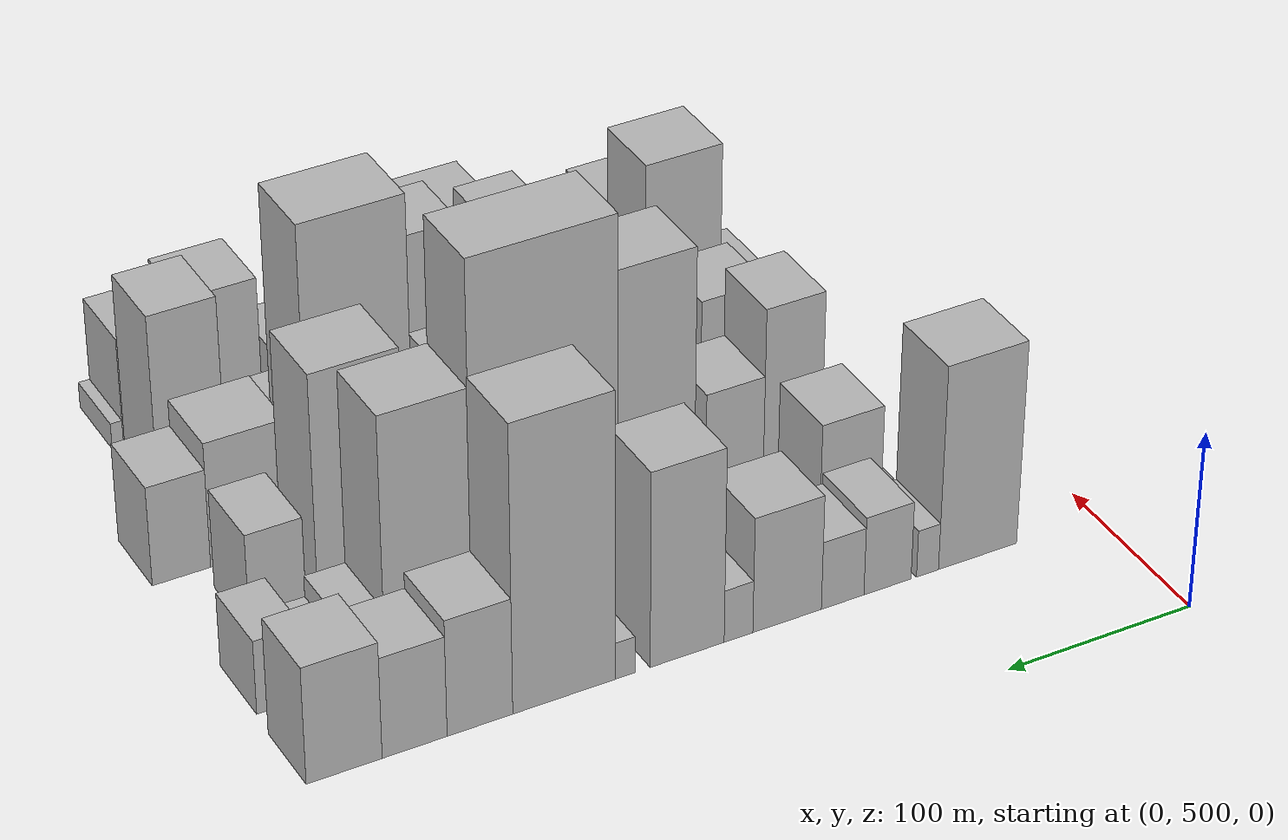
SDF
<sdf version="1.6">
 <world name="default">
  <model name="building_42">
   <static>1</static>
   <pose>100.0000 566.7996 0 0.000000 0.000000 0.000000</pose>
   <link name="link">
    <pose>0 0 58.50 0 0 0</pose>
    <collision name="collision"><geometry><box><size>40.0000 43.5507 117.0000</size></box></geometry></collision>
    <visual name="visual">
     <cast_shadows>0</cast_shadows>
     <geometry><box><size>40.0000 43.5507 117.0000</size></box></geometry>
     <material>
      <script>
       <uri>model://HANNAS_wall/materials/scripts</uri>
       <uri>model://HANNAS_wall/materials/textures</uri>
       <name>vrc/HANNAS_wall</name>
      </script>
     </material>
    </visual>
   </link>
  </model>
  <model name="building_43">
   <static>1</static>
   <pose>100.0000 594.6401 0 0.000000 0.000000 0.000000</pose>
   <link name="link">
    <pose>0 0 13.50 0 0 0</pose>
    <collision name="collision"><geometry><box><size>40.0000 12.1301 27.0000</size></box></geometry></collision>
    <visual name="visual">
     <cast_shadows>0</cast_shadows>
     <geometry><box><size>40.0000 12.1301 27.0000</size></box></geometry>
     <material>
      <script>
       <uri>model://HANNAS_wall/materials/scripts</uri>
       <uri>model://HANNAS_wall/materials/textures</uri>
       <name>vrc/HANNAS_wall</name>
      </script>
     </material>
    </visual>
   </link>
  </model>
  <model name="building_44">
   <static>1</static>
   <pose>100.0000 616.6186 0 0.000000 0.000000 0.000000</pose>
   <link name="link">
    <pose>0 0 22.50 0 0 0</pose>
    <collision name="collision"><geometry><box><size>40.0000 25.8270 45.0000</size></box></geometry></collision>
    <visual name="visual">
     <cast_shadows>0</cast_shadows>
     <geometry><box><size>40.0000 25.8270 45.0000</size></box></geometry>
     <material>
      <script>
       <uri>model://HANNAS_wall/materials/scripts</uri>
       <uri>model://HANNAS_wall/materials/textures</uri>
       <name>vrc/HANNAS_wall</name>
      </script>
     </material>
    </visual>
   </link>
  </model>
  <model name="building_45">
   <static>1</static>
   <pose>100.0000 641.0916 0 0.000000 0.000000 0.000000</pose>
   <link name="link">
    <pose>0 0 19.50 0 0 0</pose>
    <collision name="collision"><geometry><box><size>40.0000 23.1189 39.0000</size></box></geometry></collision>
    <visual name="visual">
     <cast_shadows>0</cast_shadows>
     <geometry><box><size>40.0000 23.1189 39.0000</size></box></geometry>
     <material>
      <script>
       <uri>model://HANNAS_wall/materials/scripts</uri>
       <uri>model://HANNAS_wall/materials/textures</uri>
       <name>vrc/HANNAS_wall</name>
      </script>
     </material>
    </visual>
   </link>
  </model>
  <model name="building_46">
   <static>1</static>
   <pose>100.0000 671.0552 0 0.000000 0.000000 0.000000</pose>
   <link name="link">
    <pose>0 0 33.00 0 0 0</pose>
    <collision name="collision"><geometry><box><size>40.0000 36.8083 66.0000</size></box></geometry></collision>
    <visual name="visual">
     <cast_shadows>0</cast_shadows>
     <geometry><box><size>40.0000 36.8083 66.0000</size></box></geometry>
     <material>
      <script>
       <uri>model://HANNAS_wall/materials/scripts</uri>
       <uri>model://HANNAS_wall/materials/textures</uri>
       <name>vrc/HANNAS_wall</name>
      </script>
     </material>
    </visual>
   </link>
  </model>
  <model name="building_47">
   <static>1</static>
   <pose>100.0000 697.0982 0 0.000000 0.000000 0.000000</pose>
   <link name="link">
    <pose>0 0 15.00 0 0 0</pose>
    <collision name="collision"><geometry><box><size>40.0000 15.2777 30.0000</size></box></geometry></collision>
    <visual name="visual">
     <cast_shadows>0</cast_shadows>
     <geometry><box><size>40.0000 15.2777 30.0000</size></box></geometry>
     <material>
      <script>
       <uri>model://HANNAS_wall/materials/scripts</uri>
       <uri>model://HANNAS_wall/materials/textures</uri>
       <name>vrc/HANNAS_wall</name>
      </script>
     </material>
    </visual>
   </link>
  </model>
  <model name="building_48">
   <static>1</static>
   <pose>100.0000 724.2057 0 0.000000 0.000000 0.000000</pose>
   <link name="link">
    <pose>0 0 55.50 0 0 0</pose>
    <collision name="collision"><geometry><box><size>40.0000 38.9373 111.0000</size></box></geometry></collision>
    <visual name="visual">
     <cast_shadows>0</cast_shadows>
     <geometry><box><size>40.0000 38.9373 111.0000</size></box></geometry>
     <material>
      <script>
       <uri>model://HANNAS_wall/materials/scripts</uri>
       <uri>model://HANNAS_wall/materials/textures</uri>
       <name>vrc/HANNAS_wall</name>
      </script>
     </material>
    </visual>
   </link>
  </model>
  <model name="building_49">
   <static>1</static>
   <pose>100.0000 756.7948 0 0.000000 0.000000 0.000000</pose>
   <link name="link">
    <pose>0 0 10.50 0 0 0</pose>
    <collision name="collision"><geometry><box><size>40.0000 10.2408 21.0000</size></box></geometry></collision>
    <visual name="visual">
     <cast_shadows>0</cast_shadows>
     <geometry><box><size>40.0000 10.2408 21.0000</size></box></geometry>
     <material>
      <script>
       <uri>model://HANNAS_wall/materials/scripts</uri>
       <uri>model://HANNAS_wall/materials/textures</uri>
       <name>vrc/HANNAS_wall</name>
      </script>
     </material>
    </visual>
   </link>
  </model>
  <model name="building_50">
   <static>1</static>
   <pose>100.0000 788.2646 0 0.000000 0.000000 0.000000</pose>
   <link name="link">
    <pose>0 0 81.00 0 0 0</pose>
    <collision name="collision"><geometry><box><size>40.0000 52.6990 162.0000</size></box></geometry></collision>
    <visual name="visual">
     <cast_shadows>0</cast_shadows>
     <geometry><box><size>40.0000 52.6990 162.0000</size></box></geometry>
     <material>
      <script>
       <uri>model://HANNAS_wall/materials/scripts</uri>
       <uri>model://HANNAS_wall/materials/textures</uri>
       <name>vrc/HANNAS_wall</name>
      </script>
     </material>
    </visual>
   </link>
  </model>
  <model name="building_51">
   <static>1</static>
   <pose>100.0000 831.2229 0 0.000000 0.000000 0.000000</pose>
   <link name="link">
    <pose>0 0 33.00 0 0 0</pose>
    <collision name="collision"><geometry><box><size>40.0000 33.2175 66.0000</size></box></geometry></collision>
    <visual name="visual">
     <cast_shadows>0</cast_shadows>
     <geometry><box><size>40.0000 33.2175 66.0000</size></box></geometry>
     <material>
      <script>
       <uri>model://HANNAS_wall/materials/scripts</uri>
       <uri>model://HANNAS_wall/materials/textures</uri>
       <name>vrc/HANNAS_wall</name>
      </script>
     </material>
    </visual>
   </link>
  </model>
  <model name="building_52">
   <static>1</static>
   <pose>100.0000 864.0846 0 0.000000 0.000000 0.000000</pose>
   <link name="link">
    <pose>0 0 28.50 0 0 0</pose>
    <collision name="collision"><geometry><box><size>40.0000 32.5060 57.0000</size></box></geometry></collision>
    <visual name="visual">
     <cast_shadows>0</cast_shadows>
     <geometry><box><size>40.0000 32.5060 57.0000</size></box></geometry>
     <material>
      <script>
       <uri>model://HANNAS_wall/materials/scripts</uri>
       <uri>model://HANNAS_wall/materials/textures</uri>
       <name>vrc/HANNAS_wall</name>
      </script>
     </material>
    </visual>
   </link>
  </model>
  <model name="building_53">
   <static>1</static>
   <pose>100.0000 899.1114 0 0.000000 0.000000 0.000000</pose>
   <link name="link">
    <pose>0 0 33.00 0 0 0</pose>
    <collision name="collision"><geometry><box><size>40.0000 37.5475 66.0000</size></box></geometry></collision>
    <visual name="visual">
     <cast_shadows>0</cast_shadows>
     <geometry><box><size>40.0000 37.5475 66.0000</size></box></geometry>
     <material>
      <script>
       <uri>model://HANNAS_wall/materials/scripts</uri>
       <uri>model://HANNAS_wall/materials/textures</uri>
       <name>vrc/HANNAS_wall</name>
      </script>
     </material>
    </visual>
   </link>
  </model>
  <model name="building_98">
   <static>1</static>
   <pose>155.0000 583.8483 0 0.000000 0.000000 0.000000</pose>
   <link name="link">
    <pose>0 0 7.50 0 0 0</pose>
    <collision name="collision"><geometry><box><size>40.0000 6.7222 15.0000</size></box></geometry></collision>
    <visual name="visual">
     <cast_shadows>0</cast_shadows>
     <geometry><box><size>40.0000 6.7222 15.0000</size></box></geometry>
     <material>
      <script>
       <uri>model://HANNAS_wall/materials/scripts</uri>
       <uri>model://HANNAS_wall/materials/textures</uri>
       <name>vrc/HANNAS_wall</name>
      </script>
     </material>
    </visual>
   </link>
  </model>
  <model name="building_99">
   <static>1</static>
   <pose>155.0000 604.2268 0 0.000000 0.000000 0.000000</pose>
   <link name="link">
    <pose>0 0 30.00 0 0 0</pose>
    <collision name="collision"><geometry><box><size>40.0000 34.0348 60.0000</size></box></geometry></collision>
    <visual name="visual">
     <cast_shadows>0</cast_shadows>
     <geometry><box><size>40.0000 34.0348 60.0000</size></box></geometry>
     <material>
      <script>
       <uri>model://HANNAS_wall/materials/scripts</uri>
       <uri>model://HANNAS_wall/materials/textures</uri>
       <name>vrc/HANNAS_wall</name>
      </script>
     </material>
    </visual>
   </link>
  </model>
  <model name="building_100">
   <static>1</static>
   <pose>155.0000 768.6845 0 0.000000 0.000000 0.000000</pose>
   <link name="link">
    <pose>0 0 106.50 0 0 0</pose>
    <collision name="collision"><geometry><box><size>40.0000 76.2935 213.0000</size></box></geometry></collision>
    <visual name="visual">
     <cast_shadows>0</cast_shadows>
     <geometry><box><size>40.0000 76.2935 213.0000</size></box></geometry>
     <material>
      <script>
       <uri>model://HANNAS_wall/materials/scripts</uri>
       <uri>model://HANNAS_wall/materials/textures</uri>
       <name>vrc/HANNAS_wall</name>
      </script>
     </material>
    </visual>
   </link>
  </model>
  <model name="building_101">
   <static>1</static>
   <pose>155.0000 829.3334 0 0.000000 0.000000 0.000000</pose>
   <link name="link">
    <pose>0 0 72.00 0 0 0</pose>
    <collision name="collision"><geometry><box><size>40.0000 45.0042 144.0000</size></box></geometry></collision>
    <visual name="visual">
     <cast_shadows>0</cast_shadows>
     <geometry><box><size>40.0000 45.0042 144.0000</size></box></geometry>
     <material>
      <script>
       <uri>model://HANNAS_wall/materials/scripts</uri>
       <uri>model://HANNAS_wall/materials/textures</uri>
       <name>vrc/HANNAS_wall</name>
      </script>
     </material>
    </visual>
   </link>
  </model>
  <model name="building_102">
   <static>1</static>
   <pose>155.0000 862.3340 0 0.000000 0.000000 0.000000</pose>
   <link name="link">
    <pose>0 0 18.00 0 0 0</pose>
    <collision name="collision"><geometry><box><size>40.0000 20.9971 36.0000</size></box></geometry></collision>
    <visual name="visual">
     <cast_shadows>0</cast_shadows>
     <geometry><box><size>40.0000 20.9971 36.0000</size></box></geometry>
     <material>
      <script>
       <uri>model://HANNAS_wall/materials/scripts</uri>
       <uri>model://HANNAS_wall/materials/textures</uri>
       <name>vrc/HANNAS_wall</name>
      </script>
     </material>
    </visual>
   </link>
  </model>
  <model name="building_103">
   <static>1</static>
   <pose>155.0000 877.9885 0 0.000000 0.000000 0.000000</pose>
   <link name="link">
    <pose>0 0 12.00 0 0 0</pose>
    <collision name="collision"><geometry><box><size>40.0000 10.3117 24.0000</size></box></geometry></collision>
    <visual name="visual">
     <cast_shadows>0</cast_shadows>
     <geometry><box><size>40.0000 10.3117 24.0000</size></box></geometry>
     <material>
      <script>
       <uri>model://HANNAS_wall/materials/scripts</uri>
       <uri>model://HANNAS_wall/materials/textures</uri>
       <name>vrc/HANNAS_wall</name>
      </script>
     </material>
    </visual>
   </link>
  </model>
  <model name="building_104">
   <static>1</static>
   <pose>155.0000 904.3939 0 0.000000 0.000000 0.000000</pose>
   <link name="link">
    <pose>0 0 21.00 0 0 0</pose>
    <collision name="collision"><geometry><box><size>40.0000 24.4991 42.0000</size></box></geometry></collision>
    <visual name="visual">
     <cast_shadows>0</cast_shadows>
     <geometry><box><size>40.0000 24.4991 42.0000</size></box></geometry>
     <material>
      <script>
       <uri>model://HANNAS_wall/materials/scripts</uri>
       <uri>model://HANNAS_wall/materials/textures</uri>
       <name>vrc/HANNAS_wall</name>
      </script>
     </material>
    </visual>
   </link>
  </model>
  <model name="building_146">
   <static>1</static>
   <pose>210.0000 573.0107 0 0.000000 0.000000 0.000000</pose>
   <link name="link">
    <pose>0 0 10.50 0 0 0</pose>
    <collision name="collision"><geometry><box><size>40.0000 9.8773 21.0000</size></box></geometry></collision>
    <visual name="visual">
     <cast_shadows>0</cast_shadows>
     <geometry><box><size>40.0000 9.8773 21.0000</size></box></geometry>
     <material>
      <script>
       <uri>model://HANNAS_wall/materials/scripts</uri>
       <uri>model://HANNAS_wall/materials/textures</uri>
       <name>vrc/HANNAS_wall</name>
      </script>
     </material>
    </visual>
   </link>
  </model>
  <model name="building_147">
   <static>1</static>
   <pose>210.0000 604.2913 0 0.000000 0.000000 0.000000</pose>
   <link name="link">
    <pose>0 0 46.50 0 0 0</pose>
    <collision name="collision"><geometry><box><size>40.0000 32.6839 93.0000</size></box></geometry></collision>
    <visual name="visual">
     <cast_shadows>0</cast_shadows>
     <geometry><box><size>40.0000 32.6839 93.0000</size></box></geometry>
     <material>
      <script>
       <uri>model://HANNAS_wall/materials/scripts</uri>
       <uri>model://HANNAS_wall/materials/textures</uri>
       <name>vrc/HANNAS_wall</name>
      </script>
     </material>
    </visual>
   </link>
  </model>
  <model name="building_148">
   <static>1</static>
   <pose>210.0000 636.7196 0 0.000000 0.000000 0.000000</pose>
   <link name="link">
    <pose>0 0 27.00 0 0 0</pose>
    <collision name="collision"><geometry><box><size>40.0000 32.1726 54.0000</size></box></geometry></collision>
    <visual name="visual">
     <cast_shadows>0</cast_shadows>
     <geometry><box><size>40.0000 32.1726 54.0000</size></box></geometry>
     <material>
      <script>
       <uri>model://HANNAS_wall/materials/scripts</uri>
       <uri>model://HANNAS_wall/materials/textures</uri>
       <name>vrc/HANNAS_wall</name>
      </script>
     </material>
    </visual>
   </link>
  </model>
  <model name="building_149">
   <static>1</static>
   <pose>210.0000 655.9022 0 0.000000 0.000000 0.000000</pose>
   <link name="link">
    <pose>0 0 7.50 0 0 0</pose>
    <collision name="collision"><geometry><box><size>40.0000 6.1927 15.0000</size></box></geometry></collision>
    <visual name="visual">
     <cast_shadows>0</cast_shadows>
     <geometry><box><size>40.0000 6.1927 15.0000</size></box></geometry>
     <material>
      <script>
       <uri>model://HANNAS_wall/materials/scripts</uri>
       <uri>model://HANNAS_wall/materials/textures</uri>
       <name>vrc/HANNAS_wall</name>
      </script>
     </material>
    </visual>
   </link>
  </model>
  <model name="building_150">
   <static>1</static>
   <pose>210.0000 684.3448 0 0.000000 0.000000 0.000000</pose>
   <link name="link">
    <pose>0 0 70.50 0 0 0</pose>
    <collision name="collision"><geometry><box><size>40.0000 50.6925 141.0000</size></box></geometry></collision>
    <visual name="visual">
     <cast_shadows>0</cast_shadows>
     <geometry><box><size>40.0000 50.6925 141.0000</size></box></geometry>
     <material>
      <script>
       <uri>model://HANNAS_wall/materials/scripts</uri>
       <uri>model://HANNAS_wall/materials/textures</uri>
       <name>vrc/HANNAS_wall</name>
      </script>
     </material>
    </visual>
   </link>
  </model>
  <model name="building_151">
   <static>1</static>
   <pose>210.0000 715.2843 0 0.000000 0.000000 0.000000</pose>
   <link name="link">
    <pose>0 0 13.50 0 0 0</pose>
    <collision name="collision"><geometry><box><size>40.0000 11.1866 27.0000</size></box></geometry></collision>
    <visual name="visual">
     <cast_shadows>0</cast_shadows>
     <geometry><box><size>40.0000 11.1866 27.0000</size></box></geometry>
     <material>
      <script>
       <uri>model://HANNAS_wall/materials/scripts</uri>
       <uri>model://HANNAS_wall/materials/textures</uri>
       <name>vrc/HANNAS_wall</name>
      </script>
     </material>
    </visual>
   </link>
  </model>
  <model name="building_152">
   <static>1</static>
   <pose>210.0000 749.1283 0 0.000000 0.000000 0.000000</pose>
   <link name="link">
    <pose>0 0 63.00 0 0 0</pose>
    <collision name="collision"><geometry><box><size>40.0000 40.5014 126.0000</size></box></geometry></collision>
    <visual name="visual">
     <cast_shadows>0</cast_shadows>
     <geometry><box><size>40.0000 40.5014 126.0000</size></box></geometry>
     <material>
      <script>
       <uri>model://HANNAS_wall/materials/scripts</uri>
       <uri>model://HANNAS_wall/materials/textures</uri>
       <name>vrc/HANNAS_wall</name>
      </script>
     </material>
    </visual>
   </link>
  </model>
  <model name="building_153">
   <static>1</static>
   <pose>210.0000 791.7568 0 0.000000 0.000000 0.000000</pose>
   <link name="link">
    <pose>0 0 37.50 0 0 0</pose>
    <collision name="collision"><geometry><box><size>40.0000 44.7557 75.0000</size></box></geometry></collision>
    <visual name="visual">
     <cast_shadows>0</cast_shadows>
     <geometry><box><size>40.0000 44.7557 75.0000</size></box></geometry>
     <material>
      <script>
       <uri>model://HANNAS_wall/materials/scripts</uri>
       <uri>model://HANNAS_wall/materials/textures</uri>
       <name>vrc/HANNAS_wall</name>
      </script>
     </material>
    </visual>
   </link>
  </model>
  <model name="building_154">
   <static>1</static>
   <pose>210.0000 836.9797 0 0.000000 0.000000 0.000000</pose>
   <link name="link">
    <pose>0 0 67.50 0 0 0</pose>
    <collision name="collision"><geometry><box><size>40.0000 45.6900 135.0000</size></box></geometry></collision>
    <visual name="visual">
     <cast_shadows>0</cast_shadows>
     <geometry><box><size>40.0000 45.6900 135.0000</size></box></geometry>
     <material>
      <script>
       <uri>model://HANNAS_wall/materials/scripts</uri>
       <uri>model://HANNAS_wall/materials/textures</uri>
       <name>vrc/HANNAS_wall</name>
      </script>
     </material>
    </visual>
   </link>
  </model>
  <model name="building_155">
   <static>1</static>
   <pose>210.0000 880.3479 0 0.000000 0.000000 0.000000</pose>
   <link name="link">
    <pose>0 0 28.50 0 0 0</pose>
    <collision name="collision"><geometry><box><size>40.0000 29.0463 57.0000</size></box></geometry></collision>
    <visual name="visual">
     <cast_shadows>0</cast_shadows>
     <geometry><box><size>40.0000 29.0463 57.0000</size></box></geometry>
     <material>
      <script>
       <uri>model://HANNAS_wall/materials/scripts</uri>
       <uri>model://HANNAS_wall/materials/textures</uri>
       <name>vrc/HANNAS_wall</name>
      </script>
     </material>
    </visual>
   </link>
  </model>
  <model name="building_200">
   <static>1</static>
   <pose>265.0000 583.5287 0 0.000000 0.000000 0.000000</pose>
   <link name="link">
    <pose>0 0 10.50 0 0 0</pose>
    <collision name="collision"><geometry><box><size>40.0000 9.0259 21.0000</size></box></geometry></collision>
    <visual name="visual">
     <cast_shadows>0</cast_shadows>
     <geometry><box><size>40.0000 9.0259 21.0000</size></box></geometry>
     <material>
      <script>
       <uri>model://HANNAS_wall/materials/scripts</uri>
       <uri>model://HANNAS_wall/materials/textures</uri>
       <name>vrc/HANNAS_wall</name>
      </script>
     </material>
    </visual>
   </link>
  </model>
  <model name="building_201">
   <static>1</static>
   <pose>265.0000 606.4625 0 0.000000 0.000000 0.000000</pose>
   <link name="link">
    <pose>0 0 33.00 0 0 0</pose>
    <collision name="collision"><geometry><box><size>40.0000 36.8416 66.0000</size></box></geometry></collision>
    <visual name="visual">
     <cast_shadows>0</cast_shadows>
     <geometry><box><size>40.0000 36.8416 66.0000</size></box></geometry>
     <material>
      <script>
       <uri>model://HANNAS_wall/materials/scripts</uri>
       <uri>model://HANNAS_wall/materials/textures</uri>
       <name>vrc/HANNAS_wall</name>
      </script>
     </material>
    </visual>
   </link>
  </model>
  <model name="building_202">
   <static>1</static>
   <pose>265.0000 650.4898 0 0.000000 0.000000 0.000000</pose>
   <link name="link">
    <pose>0 0 31.50 0 0 0</pose>
    <collision name="collision"><geometry><box><size>40.0000 37.2130 63.0000</size></box></geometry></collision>
    <visual name="visual">
     <cast_shadows>0</cast_shadows>
     <geometry><box><size>40.0000 37.2130 63.0000</size></box></geometry>
     <material>
      <script>
       <uri>model://HANNAS_wall/materials/scripts</uri>
       <uri>model://HANNAS_wall/materials/textures</uri>
       <name>vrc/HANNAS_wall</name>
      </script>
     </material>
    </visual>
   </link>
  </model>
  <model name="building_203">
   <static>1</static>
   <pose>265.0000 682.7655 0 0.000000 0.000000 0.000000</pose>
   <link name="link">
    <pose>0 0 13.50 0 0 0</pose>
    <collision name="collision"><geometry><box><size>40.0000 13.3385 27.0000</size></box></geometry></collision>
    <visual name="visual">
     <cast_shadows>0</cast_shadows>
     <geometry><box><size>40.0000 13.3385 27.0000</size></box></geometry>
     <material>
      <script>
       <uri>model://HANNAS_wall/materials/scripts</uri>
       <uri>model://HANNAS_wall/materials/textures</uri>
       <name>vrc/HANNAS_wall</name>
      </script>
     </material>
    </visual>
   </link>
  </model>
  <model name="building_204">
   <static>1</static>
   <pose>265.0000 702.5798 0 0.000000 0.000000 0.000000</pose>
   <link name="link">
    <pose>0 0 22.50 0 0 0</pose>
    <collision name="collision"><geometry><box><size>40.0000 26.2903 45.0000</size></box></geometry></collision>
    <visual name="visual">
     <cast_shadows>0</cast_shadows>
     <geometry><box><size>40.0000 26.2903 45.0000</size></box></geometry>
     <material>
      <script>
       <uri>model://HANNAS_wall/materials/scripts</uri>
       <uri>model://HANNAS_wall/materials/textures</uri>
       <name>vrc/HANNAS_wall</name>
      </script>
     </material>
    </visual>
   </link>
  </model>
  <model name="building_205">
   <static>1</static>
   <pose>265.0000 744.1092 0 0.000000 0.000000 0.000000</pose>
   <link name="link">
    <pose>0 0 34.50 0 0 0</pose>
    <collision name="collision"><geometry><box><size>40.0000 40.7683 69.0000</size></box></geometry></collision>
    <visual name="visual">
     <cast_shadows>0</cast_shadows>
     <geometry><box><size>40.0000 40.7683 69.0000</size></box></geometry>
     <material>
      <script>
       <uri>model://HANNAS_wall/materials/scripts</uri>
       <uri>model://HANNAS_wall/materials/textures</uri>
       <name>vrc/HANNAS_wall</name>
      </script>
     </material>
    </visual>
   </link>
  </model>
  <model name="building_206">
   <static>1</static>
   <pose>265.0000 773.4998 0 0.000000 0.000000 0.000000</pose>
   <link name="link">
    <pose>0 0 16.50 0 0 0</pose>
    <collision name="collision"><geometry><box><size>40.0000 18.0130 33.0000</size></box></geometry></collision>
    <visual name="visual">
     <cast_shadows>0</cast_shadows>
     <geometry><box><size>40.0000 18.0130 33.0000</size></box></geometry>
     <material>
      <script>
       <uri>model://HANNAS_wall/materials/scripts</uri>
       <uri>model://HANNAS_wall/materials/textures</uri>
       <name>vrc/HANNAS_wall</name>
      </script>
     </material>
    </visual>
   </link>
  </model>
  <model name="building_207">
   <static>1</static>
   <pose>265.0000 810.2831 0 0.000000 0.000000 0.000000</pose>
   <link name="link">
    <pose>0 0 88.50 0 0 0</pose>
    <collision name="collision"><geometry><box><size>40.0000 55.5535 177.0000</size></box></geometry></collision>
    <visual name="visual">
     <cast_shadows>0</cast_shadows>
     <geometry><box><size>40.0000 55.5535 177.0000</size></box></geometry>
     <material>
      <script>
       <uri>model://HANNAS_wall/materials/scripts</uri>
       <uri>model://HANNAS_wall/materials/textures</uri>
       <name>vrc/HANNAS_wall</name>
      </script>
     </material>
    </visual>
   </link>
  </model>
  <model name="building_208">
   <static>1</static>
   <pose>265.0000 869.0043 0 0.000000 0.000000 0.000000</pose>
   <link name="link">
    <pose>0 0 36.00 0 0 0</pose>
    <collision name="collision"><geometry><box><size>40.0000 41.8890 72.0000</size></box></geometry></collision>
    <visual name="visual">
     <cast_shadows>0</cast_shadows>
     <geometry><box><size>40.0000 41.8890 72.0000</size></box></geometry>
     <material>
      <script>
       <uri>model://HANNAS_wall/materials/scripts</uri>
       <uri>model://HANNAS_wall/materials/textures</uri>
       <name>vrc/HANNAS_wall</name>
      </script>
     </material>
    </visual>
   </link>
  </model>
  <model name="building_209">
   <static>1</static>
   <pose>265.0000 904.9703 0 0.000000 0.000000 0.000000</pose>
   <link name="link">
    <pose>0 0 28.50 0 0 0</pose>
    <collision name="collision"><geometry><box><size>40.0000 30.0430 57.0000</size></box></geometry></collision>
    <visual name="visual">
     <cast_shadows>0</cast_shadows>
     <geometry><box><size>40.0000 30.0430 57.0000</size></box></geometry>
     <material>
      <script>
       <uri>model://HANNAS_wall/materials/scripts</uri>
       <uri>model://HANNAS_wall/materials/textures</uri>
       <name>vrc/HANNAS_wall</name>
      </script>
     </material>
    </visual>
   </link>
  </model>
  <model name="building_247">
   <static>1</static>
   <pose>320.0000 566.5186 0 0.000000 0.000000 0.000000</pose>
   <link name="link">
    <pose>0 0 16.50 0 0 0</pose>
    <collision name="collision"><geometry><box><size>40.0000 19.6658 33.0000</size></box></geometry></collision>
    <visual name="visual">
     <cast_shadows>0</cast_shadows>
     <geometry><box><size>40.0000 19.6658 33.0000</size></box></geometry>
     <material>
      <script>
       <uri>model://HANNAS_wall/materials/scripts</uri>
       <uri>model://HANNAS_wall/materials/textures</uri>
       <name>vrc/HANNAS_wall</name>
      </script>
     </material>
    </visual>
   </link>
  </model>
  <model name="building_248">
   <static>1</static>
   <pose>320.0000 579.6575 0 0.000000 0.000000 0.000000</pose>
   <link name="link">
    <pose>0 0 7.50 0 0 0</pose>
    <collision name="collision"><geometry><box><size>40.0000 6.6121 15.0000</size></box></geometry></collision>
    <visual name="visual">
     <cast_shadows>0</cast_shadows>
     <geometry><box><size>40.0000 6.6121 15.0000</size></box></geometry>
     <material>
      <script>
       <uri>model://HANNAS_wall/materials/scripts</uri>
       <uri>model://HANNAS_wall/materials/textures</uri>
       <name>vrc/HANNAS_wall</name>
      </script>
     </material>
    </visual>
   </link>
  </model>
  <model name="building_249">
   <static>1</static>
   <pose>320.0000 604.5061 0 0.000000 0.000000 0.000000</pose>
   <link name="link">
    <pose>0 0 57.00 0 0 0</pose>
    <collision name="collision"><geometry><box><size>40.0000 43.0851 114.0000</size></box></geometry></collision>
    <visual name="visual">
     <cast_shadows>0</cast_shadows>
     <geometry><box><size>40.0000 43.0851 114.0000</size></box></geometry>
     <material>
      <script>
       <uri>model://HANNAS_wall/materials/scripts</uri>
       <uri>model://HANNAS_wall/materials/textures</uri>
       <name>vrc/HANNAS_wall</name>
      </script>
     </material>
    </visual>
   </link>
  </model>
  <model name="building_250">
   <static>1</static>
   <pose>320.0000 631.4501 0 0.000000 0.000000 0.000000</pose>
   <link name="link">
    <pose>0 0 12.00 0 0 0</pose>
    <collision name="collision"><geometry><box><size>40.0000 10.8028 24.0000</size></box></geometry></collision>
    <visual name="visual">
     <cast_shadows>0</cast_shadows>
     <geometry><box><size>40.0000 10.8028 24.0000</size></box></geometry>
     <material>
      <script>
       <uri>model://HANNAS_wall/materials/scripts</uri>
       <uri>model://HANNAS_wall/materials/textures</uri>
       <name>vrc/HANNAS_wall</name>
      </script>
     </material>
    </visual>
   </link>
  </model>
  <model name="building_251">
   <static>1</static>
   <pose>320.0000 657.9421 0 0.000000 0.000000 0.000000</pose>
   <link name="link">
    <pose>0 0 40.50 0 0 0</pose>
    <collision name="collision"><geometry><box><size>40.0000 42.1812 81.0000</size></box></geometry></collision>
    <visual name="visual">
     <cast_shadows>0</cast_shadows>
     <geometry><box><size>40.0000 42.1812 81.0000</size></box></geometry>
     <material>
      <script>
       <uri>model://HANNAS_wall/materials/scripts</uri>
       <uri>model://HANNAS_wall/materials/textures</uri>
       <name>vrc/HANNAS_wall</name>
      </script>
     </material>
    </visual>
   </link>
  </model>
  <model name="building_252">
   <static>1</static>
   <pose>320.0000 695.3866 0 0.000000 0.000000 0.000000</pose>
   <link name="link">
    <pose>0 0 52.50 0 0 0</pose>
    <collision name="collision"><geometry><box><size>40.0000 32.7078 105.0000</size></box></geometry></collision>
    <visual name="visual">
     <cast_shadows>0</cast_shadows>
     <geometry><box><size>40.0000 32.7078 105.0000</size></box></geometry>
     <material>
      <script>
       <uri>model://HANNAS_wall/materials/scripts</uri>
       <uri>model://HANNAS_wall/materials/textures</uri>
       <name>vrc/HANNAS_wall</name>
      </script>
     </material>
    </visual>
   </link>
  </model>
  <model name="building_253">
   <static>1</static>
   <pose>320.0000 719.9599 0 0.000000 0.000000 0.000000</pose>
   <link name="link">
    <pose>0 0 15.00 0 0 0</pose>
    <collision name="collision"><geometry><box><size>40.0000 16.4387 30.0000</size></box></geometry></collision>
    <visual name="visual">
     <cast_shadows>0</cast_shadows>
     <geometry><box><size>40.0000 16.4387 30.0000</size></box></geometry>
     <material>
      <script>
       <uri>model://HANNAS_wall/materials/scripts</uri>
       <uri>model://HANNAS_wall/materials/textures</uri>
       <name>vrc/HANNAS_wall</name>
      </script>
     </material>
    </visual>
   </link>
  </model>
  <model name="building_254">
   <static>1</static>
   <pose>320.0000 748.5686 0 0.000000 0.000000 0.000000</pose>
   <link name="link">
    <pose>0 0 57.00 0 0 0</pose>
    <collision name="collision"><geometry><box><size>40.0000 40.7787 114.0000</size></box></geometry></collision>
    <visual name="visual">
     <cast_shadows>0</cast_shadows>
     <geometry><box><size>40.0000 40.7787 114.0000</size></box></geometry>
     <material>
      <script>
       <uri>model://HANNAS_wall/materials/scripts</uri>
       <uri>model://HANNAS_wall/materials/textures</uri>
       <name>vrc/HANNAS_wall</name>
      </script>
     </material>
    </visual>
   </link>
  </model>
  <model name="building_255">
   <static>1</static>
   <pose>320.0000 784.0006 0 0.000000 0.000000 0.000000</pose>
   <link name="link">
    <pose>0 0 27.00 0 0 0</pose>
    <collision name="collision"><geometry><box><size>40.0000 30.0853 54.0000</size></box></geometry></collision>
    <visual name="visual">
     <cast_shadows>0</cast_shadows>
     <geometry><box><size>40.0000 30.0853 54.0000</size></box></geometry>
     <material>
      <script>
       <uri>model://HANNAS_wall/materials/scripts</uri>
       <uri>model://HANNAS_wall/materials/textures</uri>
       <name>vrc/HANNAS_wall</name>
      </script>
     </material>
    </visual>
   </link>
  </model>
  <model name="building_256">
   <static>1</static>
   <pose>320.0000 817.0098 0 0.000000 0.000000 0.000000</pose>
   <link name="link">
    <pose>0 0 15.00 0 0 0</pose>
    <collision name="collision"><geometry><box><size>40.0000 17.9331 30.0000</size></box></geometry></collision>
    <visual name="visual">
     <cast_shadows>0</cast_shadows>
     <geometry><box><size>40.0000 17.9331 30.0000</size></box></geometry>
     <material>
      <script>
       <uri>model://HANNAS_wall/materials/scripts</uri>
       <uri>model://HANNAS_wall/materials/textures</uri>
       <name>vrc/HANNAS_wall</name>
      </script>
     </material>
    </visual>
   </link>
  </model>
  <model name="building_257">
   <static>1</static>
   <pose>320.0000 836.5805 0 0.000000 0.000000 0.000000</pose>
   <link name="link">
    <pose>0 0 10.50 0 0 0</pose>
    <collision name="collision"><geometry><box><size>40.0000 9.2084 21.0000</size></box></geometry></collision>
    <visual name="visual">
     <cast_shadows>0</cast_shadows>
     <geometry><box><size>40.0000 9.2084 21.0000</size></box></geometry>
     <material>
      <script>
       <uri>model://HANNAS_wall/materials/scripts</uri>
       <uri>model://HANNAS_wall/materials/textures</uri>
       <name>vrc/HANNAS_wall</name>
      </script>
     </material>
    </visual>
   </link>
  </model>
  <model name="building_258">
   <static>1</static>
   <pose>320.0000 850.7938 0 0.000000 0.000000 0.000000</pose>
   <link name="link">
    <pose>0 0 13.50 0 0 0</pose>
    <collision name="collision"><geometry><box><size>40.0000 11.2181 27.0000</size></box></geometry></collision>
    <visual name="visual">
     <cast_shadows>0</cast_shadows>
     <geometry><box><size>40.0000 11.2181 27.0000</size></box></geometry>
     <material>
      <script>
       <uri>model://HANNAS_wall/materials/scripts</uri>
       <uri>model://HANNAS_wall/materials/textures</uri>
       <name>vrc/HANNAS_wall</name>
      </script>
     </material>
    </visual>
   </link>
  </model>
  <model name="building_259">
   <static>1</static>
   <pose>320.0000 874.3177 0 0.000000 0.000000 0.000000</pose>
   <link name="link">
    <pose>0 0 55.50 0 0 0</pose>
    <collision name="collision"><geometry><box><size>40.0000 35.8296 111.0000</size></box></geometry></collision>
    <visual name="visual">
     <cast_shadows>0</cast_shadows>
     <geometry><box><size>40.0000 35.8296 111.0000</size></box></geometry>
     <material>
      <script>
       <uri>model://HANNAS_wall/materials/scripts</uri>
       <uri>model://HANNAS_wall/materials/textures</uri>
       <name>vrc/HANNAS_wall</name>
      </script>
     </material>
    </visual>
   </link>
  </model>
  <model name="building_305">
   <static>1</static>
   <pose>375.0000 572.6055 0 0.000000 0.000000 0.000000</pose>
   <link name="link">
    <pose>0 0 30.00 0 0 0</pose>
    <collision name="collision"><geometry><box><size>40.0000 30.3597 60.0000</size></box></geometry></collision>
    <visual name="visual">
     <cast_shadows>0</cast_shadows>
     <geometry><box><size>40.0000 30.3597 60.0000</size></box></geometry>
     <material>
      <script>
       <uri>model://HANNAS_wall/materials/scripts</uri>
       <uri>model://HANNAS_wall/materials/textures</uri>
       <name>vrc/HANNAS_wall</name>
      </script>
     </material>
    </visual>
   </link>
  </model>
  <model name="building_306">
   <static>1</static>
   <pose>375.0000 604.1171 0 0.000000 0.000000 0.000000</pose>
   <link name="link">
    <pose>0 0 28.50 0 0 0</pose>
    <collision name="collision"><geometry><box><size>40.0000 32.6635 57.0000</size></box></geometry></collision>
    <visual name="visual">
     <cast_shadows>0</cast_shadows>
     <geometry><box><size>40.0000 32.6635 57.0000</size></box></geometry>
     <material>
      <script>
       <uri>model://HANNAS_wall/materials/scripts</uri>
       <uri>model://HANNAS_wall/materials/textures</uri>
       <name>vrc/HANNAS_wall</name>
      </script>
     </material>
    </visual>
   </link>
  </model>
  <model name="building_307">
   <static>1</static>
   <pose>375.0000 625.3231 0 0.000000 0.000000 0.000000</pose>
   <link name="link">
    <pose>0 0 10.50 0 0 0</pose>
    <collision name="collision"><geometry><box><size>40.0000 9.7486 21.0000</size></box></geometry></collision>
    <visual name="visual">
     <cast_shadows>0</cast_shadows>
     <geometry><box><size>40.0000 9.7486 21.0000</size></box></geometry>
     <material>
      <script>
       <uri>model://HANNAS_wall/materials/scripts</uri>
       <uri>model://HANNAS_wall/materials/textures</uri>
       <name>vrc/HANNAS_wall</name>
      </script>
     </material>
    </visual>
   </link>
  </model>
  <model name="building_308">
   <static>1</static>
   <pose>375.0000 645.1474 0 0.000000 0.000000 0.000000</pose>
   <link name="link">
    <pose>0 0 25.50 0 0 0</pose>
    <collision name="collision"><geometry><box><size>40.0000 29.8999 51.0000</size></box></geometry></collision>
    <visual name="visual">
     <cast_shadows>0</cast_shadows>
     <geometry><box><size>40.0000 29.8999 51.0000</size></box></geometry>
     <material>
      <script>
       <uri>model://HANNAS_wall/materials/scripts</uri>
       <uri>model://HANNAS_wall/materials/textures</uri>
       <name>vrc/HANNAS_wall</name>
      </script>
     </material>
    </visual>
   </link>
  </model>
  <model name="building_309">
   <static>1</static>
   <pose>375.0000 671.4689 0 0.000000 0.000000 0.000000</pose>
   <link name="link">
    <pose>0 0 19.50 0 0 0</pose>
    <collision name="collision"><geometry><box><size>40.0000 22.7433 39.0000</size></box></geometry></collision>
    <visual name="visual">
     <cast_shadows>0</cast_shadows>
     <geometry><box><size>40.0000 22.7433 39.0000</size></box></geometry>
     <material>
      <script>
       <uri>model://HANNAS_wall/materials/scripts</uri>
       <uri>model://HANNAS_wall/materials/textures</uri>
       <name>vrc/HANNAS_wall</name>
      </script>
     </material>
    </visual>
   </link>
  </model>
  <model name="building_310">
   <static>1</static>
   <pose>375.0000 703.6495 0 0.000000 0.000000 0.000000</pose>
   <link name="link">
    <pose>0 0 40.50 0 0 0</pose>
    <collision name="collision"><geometry><box><size>40.0000 41.6178 81.0000</size></box></geometry></collision>
    <visual name="visual">
     <cast_shadows>0</cast_shadows>
     <geometry><box><size>40.0000 41.6178 81.0000</size></box></geometry>
     <material>
      <script>
       <uri>model://HANNAS_wall/materials/scripts</uri>
       <uri>model://HANNAS_wall/materials/textures</uri>
       <name>vrc/HANNAS_wall</name>
      </script>
     </material>
    </visual>
   </link>
  </model>
  <model name="building_311">
   <static>1</static>
   <pose>375.0000 743.4614 0 0.000000 0.000000 0.000000</pose>
   <link name="link">
    <pose>0 0 33.00 0 0 0</pose>
    <collision name="collision"><geometry><box><size>40.0000 38.0060 66.0000</size></box></geometry></collision>
    <visual name="visual">
     <cast_shadows>0</cast_shadows>
     <geometry><box><size>40.0000 38.0060 66.0000</size></box></geometry>
     <material>
      <script>
       <uri>model://HANNAS_wall/materials/scripts</uri>
       <uri>model://HANNAS_wall/materials/textures</uri>
       <name>vrc/HANNAS_wall</name>
      </script>
     </material>
    </visual>
   </link>
  </model>
  <model name="building_312">
   <static>1</static>
   <pose>375.0000 776.2778 0 0.000000 0.000000 0.000000</pose>
   <link name="link">
    <pose>0 0 25.50 0 0 0</pose>
    <collision name="collision"><geometry><box><size>40.0000 27.6269 51.0000</size></box></geometry></collision>
    <visual name="visual">
     <cast_shadows>0</cast_shadows>
     <geometry><box><size>40.0000 27.6269 51.0000</size></box></geometry>
     <material>
      <script>
       <uri>model://HANNAS_wall/materials/scripts</uri>
       <uri>model://HANNAS_wall/materials/textures</uri>
       <name>vrc/HANNAS_wall</name>
      </script>
     </material>
    </visual>
   </link>
  </model>
  <model name="building_313">
   <static>1</static>
   <pose>375.0000 798.1354 0 0.000000 0.000000 0.000000</pose>
   <link name="link">
    <pose>0 0 15.00 0 0 0</pose>
    <collision name="collision"><geometry><box><size>40.0000 16.0882 30.0000</size></box></geometry></collision>
    <visual name="visual">
     <cast_shadows>0</cast_shadows>
     <geometry><box><size>40.0000 16.0882 30.0000</size></box></geometry>
     <material>
      <script>
       <uri>model://HANNAS_wall/materials/scripts</uri>
       <uri>model://HANNAS_wall/materials/textures</uri>
       <name>vrc/HANNAS_wall</name>
      </script>
     </material>
    </visual>
   </link>
  </model>
  <model name="building_314">
   <static>1</static>
   <pose>375.0000 831.9489 0 0.000000 0.000000 0.000000</pose>
   <link name="link">
    <pose>0 0 37.50 0 0 0</pose>
    <collision name="collision"><geometry><box><size>40.0000 39.5387 75.0000</size></box></geometry></collision>
    <visual name="visual">
     <cast_shadows>0</cast_shadows>
     <geometry><box><size>40.0000 39.5387 75.0000</size></box></geometry>
     <material>
      <script>
       <uri>model://HANNAS_wall/materials/scripts</uri>
       <uri>model://HANNAS_wall/materials/textures</uri>
       <name>vrc/HANNAS_wall</name>
      </script>
     </material>
    </visual>
   </link>
  </model>
  <model name="building_315">
   <static>1</static>
   <pose>375.0000 869.4064 0 0.000000 0.000000 0.000000</pose>
   <link name="link">
    <pose>0 0 31.50 0 0 0</pose>
    <collision name="collision"><geometry><box><size>40.0000 35.3763 63.0000</size></box></geometry></collision>
    <visual name="visual">
     <cast_shadows>0</cast_shadows>
     <geometry><box><size>40.0000 35.3763 63.0000</size></box></geometry>
     <material>
      <script>
       <uri>model://HANNAS_wall/materials/scripts</uri>
       <uri>model://HANNAS_wall/materials/textures</uri>
       <name>vrc/HANNAS_wall</name>
      </script>
     </material>
    </visual>
   </link>
  </model>
  <model name="building_316">
   <static>1</static>
   <pose>375.0000 890.1421 0 0.000000 0.000000 0.000000</pose>
   <link name="link">
    <pose>0 0 7.50 0 0 0</pose>
    <collision name="collision"><geometry><box><size>40.0000 6.0950 15.0000</size></box></geometry></collision>
    <visual name="visual">
     <cast_shadows>0</cast_shadows>
     <geometry><box><size>40.0000 6.0950 15.0000</size></box></geometry>
     <material>
      <script>
       <uri>model://HANNAS_wall/materials/scripts</uri>
       <uri>model://HANNAS_wall/materials/textures</uri>
       <name>vrc/HANNAS_wall</name>
      </script>
     </material>
    </visual>
   </link>
  </model>
 </world>
</sdf>
